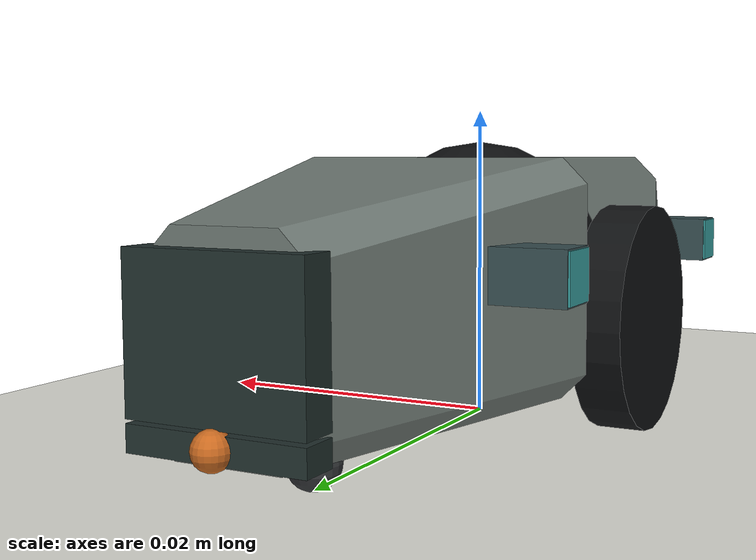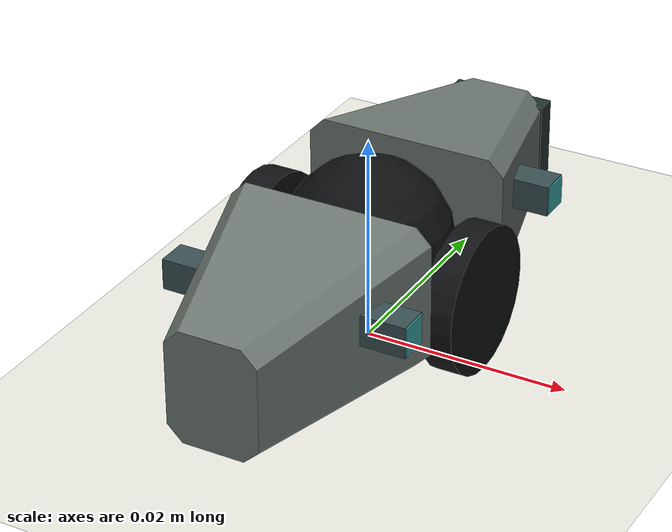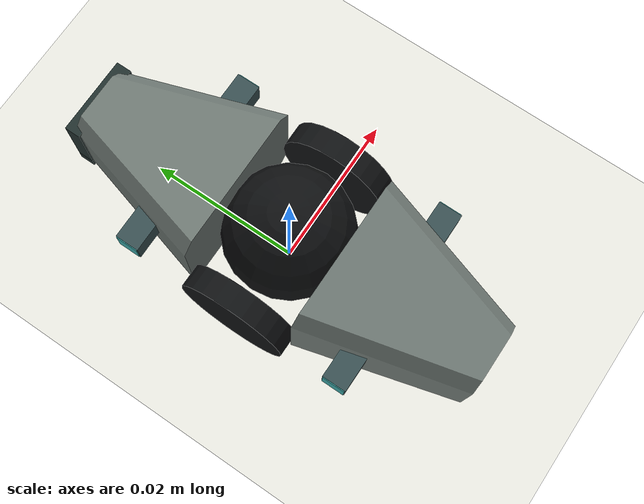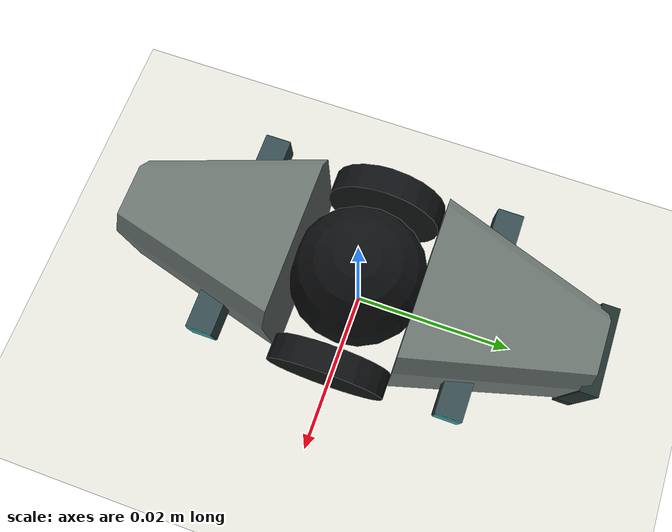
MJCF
<mujoco model="swarm_body_robot"><compiler angle="radian" /><option timestep="0.001" integrator="implicitfast" solver="Newton" cone="elliptic" iterations="50" impratio="10" /><worldbody><geom name="floor" type="plane" size="1 1 .01" friction=".3 .00001 .000001" rgba=".91 .91 .88 1" /><light pos=".1 -.15 .3" diffuse=".8 .8 .8" ambient=".3 .3 .3" /><light pos="-.15 .1 .2" diffuse=".5 .5 .5" /><body name="swarm_00" pos="0 0 0.007" quat="1 0 0 0"><freejoint name="swarm_00_free" /><inertial pos="0 -.002 .002" mass=".035" diaginertia=".0000085 .0000025 .000009" /><geom name="swarm_00_shell_front" contype="4" conaffinity="7" condim="3" friction=".3 .00001 .000001" solref=".004 1" solimp=".9 .99 .0001" mass="0" priority="2" type="mesh" mesh="swarm_lobe" quat="1 0 0 0" rgba=".43 .47 .45 1" /><geom name="swarm_00_shell_rear" contype="4" conaffinity="7" condim="3" friction=".3 .00001 .000001" solref=".004 1" solimp=".9 .99 .0001" mass="0" priority="2" type="mesh" mesh="swarm_lobe" quat="0 0 0 1" rgba=".43 .47 .45 1" /><geom name="swarm_00_ball_housing" contype="4" conaffinity="7" condim="3" friction=".3 .00001 .000001" solref=".004 1" solimp=".9 .99 .0001" mass="0" priority="2" type="sphere" size=".008" pos="0 0 .003" rgba=".055 .06 .065 1" /><geom name="swarm_00_skid_front" contype="4" conaffinity="7" condim="3" friction=".04 .000001 .0000001" solref=".004 1" solimp=".9 .99 .0001" mass="0" priority="2" type="sphere" size=".0015" pos="0 0.02 -0.0055" rgba=".22 .23 .24 1" /><geom name="swarm_00_skid_rear" contype="4" conaffinity="7" condim="3" friction=".04 .000001 .0000001" solref=".004 1" solimp=".9 .99 .0001" mass="0" priority="2" type="sphere" size=".0015" pos="0 -0.022 -0.0055" rgba=".22 .23 .24 1" /><body name="swarm_00_wheel_left_body" pos="-0.0105 0 0"><joint name="swarm_00_wheel_left" type="hinge" axis="1 0 0" damping=".000001" frictionloss=".000002" armature=".00000001" /><geom name="swarm_00_tire_left" contype="4" conaffinity="7" condim="3" friction=".85 .00001 .000001" solref=".004 1" solimp=".9 .99 .0001" mass=".001" priority="2" type="cylinder" size=".007 .0015" quat=".707106781187 0 .707106781187 0" rgba=".065 .07 .075 1" /></body><body name="swarm_00_wheel_right_body" pos="0.0105 0 0"><joint name="swarm_00_wheel_right" type="hinge" axis="1 0 0" damping=".000001" frictionloss=".000002" armature=".00000001" /><geom name="swarm_00_tire_right" contype="4" conaffinity="7" condim="3" friction=".85 .00001 .000001" solref=".004 1" solimp=".9 .99 .0001" mass=".001" priority="2" type="cylinder" size=".007 .0015" quat=".707106781187 0 .707106781187 0" rgba=".065 .07 .075 1" /></body><body name="swarm_00_carriage" pos="0 .027 0"><joint name="swarm_00_lift" type="slide" axis="0 0 1" limited="true" range="0 .008" damping=".1" armature=".00005" solreflimit=".004 1" solimplimit=".95 .99 .0001" /><inertial pos="0 0 0" mass=".003" diaginertia=".00000005 .00000008 .00000005" /><geom name="swarm_00_pad" contype="4" conaffinity="7" condim="3" friction=".7 .00001 .000001" solref=".004 1" solimp=".9 .99 .0001" mass="0" priority="2" type="box" size=".005 .001 .0007" pos="0 0 -.0029" rgba=".13 .19 .18 1" /><geom name="swarm_00_pad_upper" contype="4" conaffinity="7" condim="3" friction=".7 .00001 .000001" solref=".004 1" solimp=".9 .99 .0001" mass="0" priority="2" type="box" size=".005 .001 .004" pos="0 0 .002" rgba=".13 .19 .18 1" /><site name="swarm_00_pad_site" pos="0 .001 -.0029" size=".001" rgba=".8 .42 .13 1" /><site name="swarm_00_pad_touch_site" type="box" size=".0051 .0011 .0061" rgba="0 0 0 0" /></body><geom name="swarm_00_magnet_0_housing" type="box" pos="-0.0095 -0.014 0.004" size=".0025 .0015 .0015" mass="0" contype="4" conaffinity="7" condim="3" friction=".4 .00001 .000001" solref=".004 1" solimp=".9 .99 .0001" priority="2" rgba=".22 .31 .32 1" /><site name="swarm_00_magnet_0" type="box" size=".0014 .0014 .0001" pos="-0.012 -0.014 0.004" quat=".707106781187 0 -0.707106781187 0" rgba=".23 .65 .65 1" /><geom name="swarm_00_magnet_1_housing" type="box" pos="-0.0095 0.014 0.004" size=".0025 .0015 .0015" mass="0" contype="4" conaffinity="7" condim="3" friction=".4 .00001 .000001" solref=".004 1" solimp=".9 .99 .0001" priority="2" rgba=".22 .31 .32 1" /><site name="swarm_00_magnet_1" type="box" size=".0014 .0014 .0001" pos="-0.012 0.014 0.004" quat=".707106781187 0 -0.707106781187 0" rgba=".23 .65 .65 1" /><geom name="swarm_00_magnet_2_housing" type="box" pos="0.0095 -0.014 0.004" size=".0025 .0015 .0015" mass="0" contype="4" conaffinity="7" condim="3" friction=".4 .00001 .000001" solref=".004 1" solimp=".9 .99 .0001" priority="2" rgba=".22 .31 .32 1" /><site name="swarm_00_magnet_2" type="box" size=".0014 .0014 .0001" pos="0.012 -0.014 0.004" quat=".707106781187 0 0.707106781187 0" rgba=".23 .65 .65 1" /><geom name="swarm_00_magnet_3_housing" type="box" pos="0.0095 0.014 0.004" size=".0025 .0015 .0015" mass="0" contype="4" conaffinity="7" condim="3" friction=".4 .00001 .000001" solref=".004 1" solimp=".9 .99 .0001" priority="2" rgba=".22 .31 .32 1" /><site name="swarm_00_magnet_3" type="box" size=".0014 .0014 .0001" pos="0.012 0.014 0.004" quat=".707106781187 0 0.707106781187 0" rgba=".23 .65 .65 1" /></body></worldbody><actuator><motor name="swarm_00_motor_left" joint="swarm_00_wheel_left" gear="1" ctrllimited="true" ctrlrange="-.002 .002" forcelimited="true" forcerange="-.002 .002" /><motor name="swarm_00_motor_right" joint="swarm_00_wheel_right" gear="1" ctrllimited="true" ctrlrange="-.002 .002" forcelimited="true" forcerange="-.002 .002" /><position name="swarm_00_lift_motor" joint="swarm_00_lift" kp="250" kv="1" ctrllimited="true" ctrlrange="0 .008" forcelimited="true" forcerange="-.5 .5" /></actuator><sensor><jointpos name="swarm_00_wheel_left_position" joint="swarm_00_wheel_left" /><jointvel name="swarm_00_wheel_left_speed" joint="swarm_00_wheel_left" /><jointpos name="swarm_00_wheel_right_position" joint="swarm_00_wheel_right" /><jointvel name="swarm_00_wheel_right_speed" joint="swarm_00_wheel_right" /><jointpos name="swarm_00_lift_position" joint="swarm_00_lift" /><touch name="swarm_00_pad_touch" site="swarm_00_pad_touch_site" /></sensor><asset><mesh name="swarm_lobe" vertex="-0.0085 0.007 -0.004 0.0085 0.007 -0.004 0.01 0.007 -0.0025 0.01 0.007 0.0085 0.0085 0.007 0.01 -0.0085 0.007 0.01 -0.01 0.007 0.0085 -0.01 0.007 -0.0025 -0.003 0.027 -0.004 0.003 0.027 -0.004 0.0045 0.027 -0.0025 0.0045 0.027 0.0055 0.003 0.027 0.007 -0.003 0.027 0.007 -0.0045 0.027 0.0055 -0.0045 0.027 -0.0025" /></asset></mujoco>
